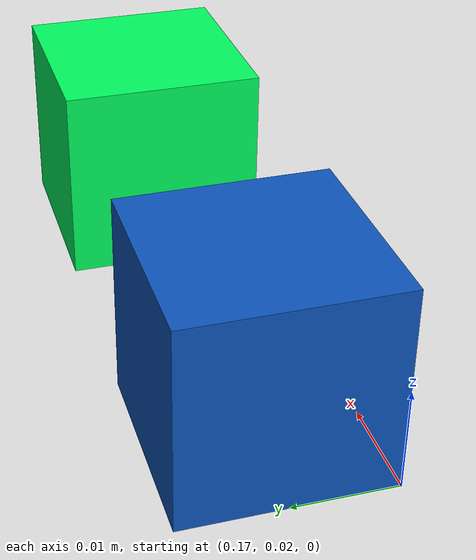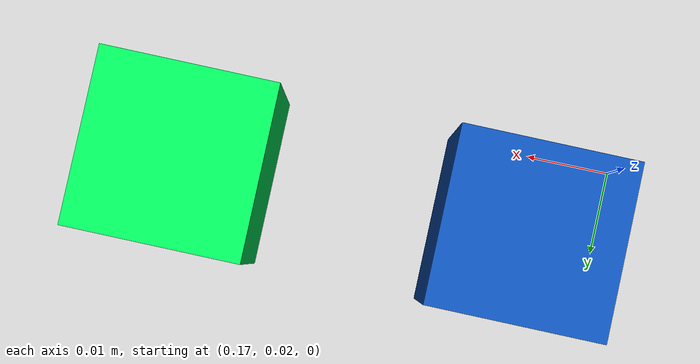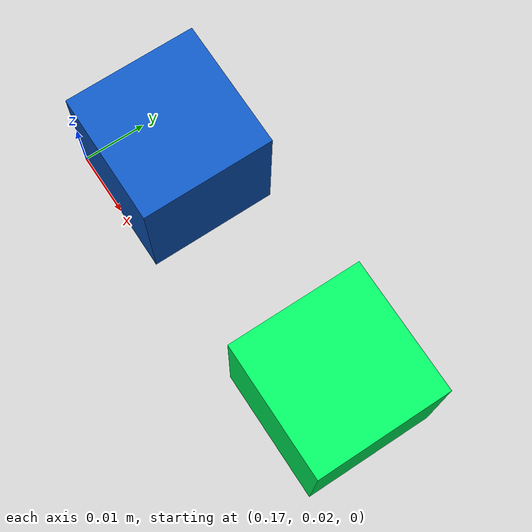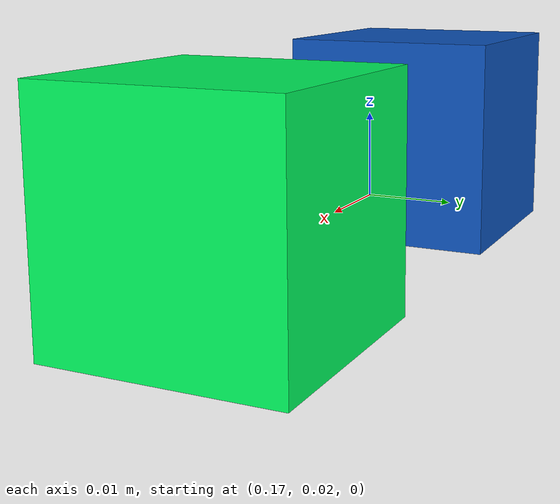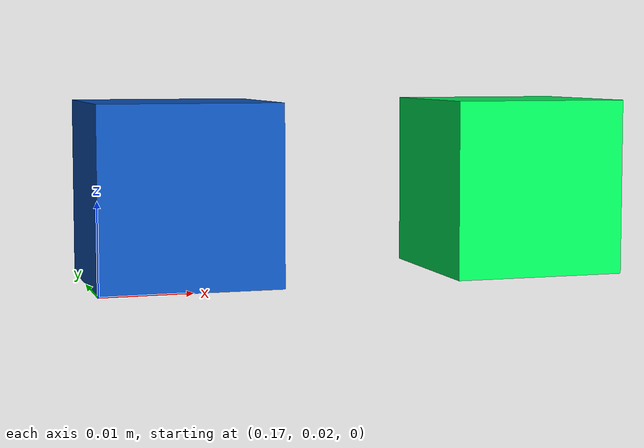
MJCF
<mujoco model="multi_cubes_2cm">
  <compiler angle="radian" autolimits="true"/>
  <option cone="elliptic" impratio="10"/>

  <worldbody>

    <!-- Blue cube -->
    <body name="blue_cube_body" pos="0.18 0.03 0.01">
      <joint type="free" name="blue_cube_joint"/>
      <geom
        type="box"
        size="0.01 0.01 0.01"
        rgba="0.05 0.33 0.74 1"
        name="blue_cube_geom"
        friction="1 0.3 0.1"
        density="500"
        group="1"
      />
    </body>

    <!-- Green cube -->
    <body name="green_cube_body" pos="0.22 0.03 0.01">
      <joint type="free" name="green_cube_joint"/>
      <geom
        type="box"
        size="0.01 0.01 0.01"
        rgba="0 0.984 0.373 1"
        name="green_cube_geom"
        friction="1 0.3 0.1"
        density="500"
        group="1"
      />
    </body>

    <!-- orange cube -->
    <body name="orange_cube_body" pos="0.18 0.03 0.01">
      <joint type="free" name="orange_cube_joint"/>
      <geom
        type="box"
        size="0.01 0.01 0.01"
        rgba="1 0.52 0.39 1"
        name="orange_cube_geom"
        friction="1 0.3 0.1"
        density="500"
        group="1"
      />
      </body>

    <!-- Purple cube -->
    <body name="purple_cube_body" pos="0.18 0.03 0.01">
      <joint type="free" name="purple_cube_joint"/>
      <geom
        type="box"
        size="0.01 0.01 0.01"
        rgba="0.45 0.31 0.58 1"
        name="purple_cube_geom"
        friction="1 0.3 0.1"
        density="500"
        group="1"
      />
    </body>

    <!-- Red cube -->
    <body name="red_cube_body" pos="0.18 0.03 0.01">
      <joint type="free" name="red_cube_joint"/>
      <geom
        type="box"
        size="0.01 0.01 0.01"
        rgba="0.98 0.33 0.31 1"
        name="red_cube_geom"
        friction="1 0.3 0.1"
        density="500"
        group="1"
      />
    </body>

    <!-- Yellow cube -->
    <body name="yellow_cube_body" pos="0.18 0.03 0.01">
      <joint type="free" name="yellow_cube_joint"/>
      <geom
        type="box"
        size="0.01 0.01 0.01"
        rgba="1 0.88 0.45 1"
        name="yellow_cube_geom"
        friction="1 0.3 0.1"
        density="500"
        group="1"
      />
    </body>
  </worldbody>
</mujoco>
